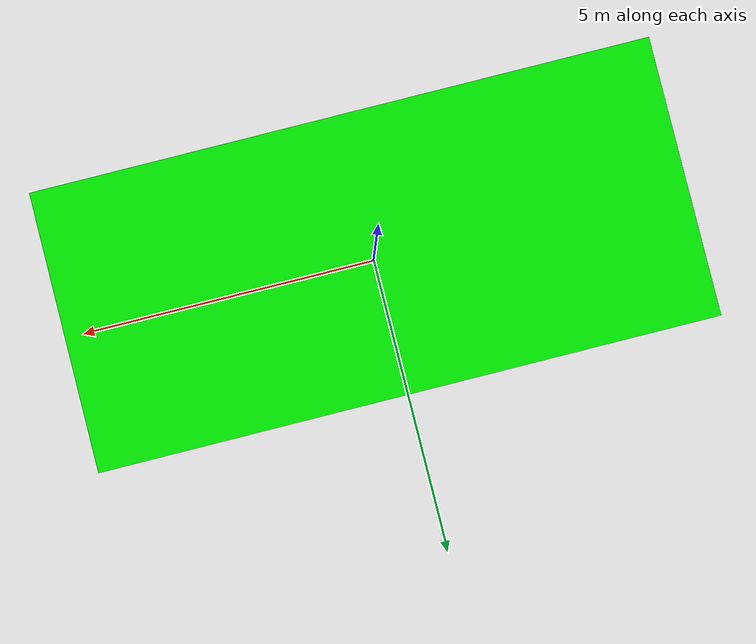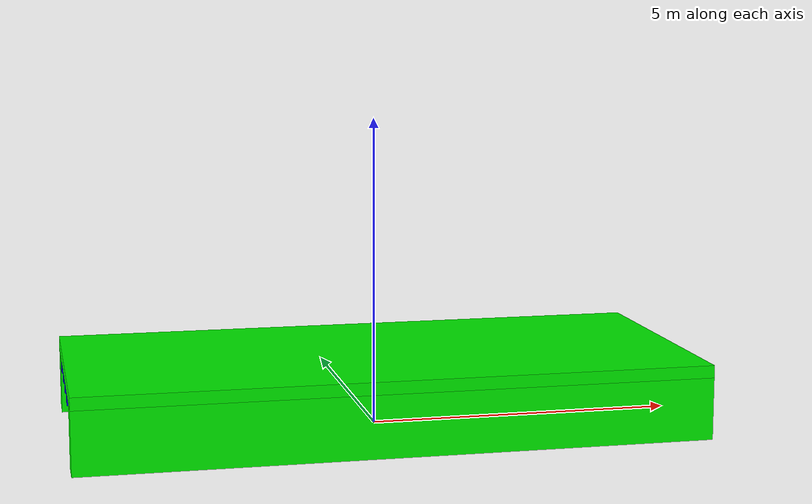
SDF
<?xml version='1.0'?>
<sdf version='1.7'>
  <model name='low_portal_with_obstacles'>
    <link name='link_0'>
      <inertial>
        <mass>1</mass>
        <inertia>
          <ixx>0.166667</ixx>
          <ixy>0</ixy>
          <ixz>0</ixz>
          <iyy>0.166667</iyy>
          <iyz>0</iyz>
          <izz>0.166667</izz>
        </inertia>
        <pose>0 0 0 0 -0 0</pose>
      </inertial>
      <pose>0 0 0 0 -0 0</pose>
      <gravity>1</gravity>
      <self_collide>0</self_collide>
      <kinematic>0</kinematic>
      <enable_wind>0</enable_wind>
      <visual name='visual'>
        <pose>0 2 0.5 0 -0 0</pose>
        <geometry>
          <box>
            <size>10 0.5 1</size>
          </box>
        </geometry>
        <material>
          <lighting>1</lighting>
          <script>
            <uri>file://media/materials/scripts/gazebo.material</uri>
            <name>Gazebo/Grey</name>
          </script>
          <shader type='pixel'>
            <normal_map>__default__</normal_map>
          </shader>
          <ambient>0 1 0 1</ambient>
          <diffuse>0.7 0.7 0.7 1</diffuse>
          <specular>0.01 0.01 0.01 1</specular>
          <emissive>0 0 0 1</emissive>
        </material>
        <transparency>0</transparency>
        <cast_shadows>1</cast_shadows>
      </visual>
      <visual name='ModelPreview_2::link_0::visual_7'>
        <pose>0 0.5 0.9 0 -0 0</pose>
        <geometry>
          <box>
            <size>10 0.2 0.2</size>
          </box>
        </geometry>
        <material>
          <lighting>1</lighting>
          <script>
            <uri>file://media/materials/scripts/gazebo.material</uri>
            <name>Gazebo/Grey</name>
          </script>
          <shader type='pixel'>
            <normal_map>__default__</normal_map>
          </shader>
          <ambient>0 0 1 1</ambient>
          <diffuse>0.7 0.7 0.7 1</diffuse>
          <specular>0.01 0.01 0.01 1</specular>
          <emissive>0 0 0 1</emissive>
        </material>
        <transparency>0</transparency>
        <cast_shadows>1</cast_shadows>
      </visual>
      <visual name='ModelPreview_2::link_0::visual_3'>
        <pose>0 1.25 0.9 0 -0 0</pose>
        <geometry>
          <box>
            <size>10 0.2 0.2</size>
          </box>
        </geometry>
        <material>
          <lighting>1</lighting>
          <script>
            <uri>file://media/materials/scripts/gazebo.material</uri>
            <name>Gazebo/Grey</name>
          </script>
          <shader type='pixel'>
            <normal_map>__default__</normal_map>
          </shader>
          <ambient>0 0 1 1</ambient>
          <diffuse>0.7 0.7 0.7 1</diffuse>
          <specular>0.01 0.01 0.01 1</specular>
          <emissive>0 0 0 1</emissive>
        </material>
        <transparency>0</transparency>
        <cast_shadows>1</cast_shadows>
      </visual>
      <visual name='ModelPreview_2::link_0::visual_8'>
        <pose>0 -0.2 0.9 0 -0 0</pose>
        <geometry>
          <box>
            <size>10 0.2 0.2</size>
          </box>
        </geometry>
        <material>
          <lighting>1</lighting>
          <script>
            <uri>file://media/materials/scripts/gazebo.material</uri>
            <name>Gazebo/Grey</name>
          </script>
          <shader type='pixel'>
            <normal_map>__default__</normal_map>
          </shader>
          <ambient>0 0 1 1</ambient>
          <diffuse>0.7 0.7 0.7 1</diffuse>
          <specular>0.01 0.01 0.01 1</specular>
          <emissive>0 0 0 1</emissive>
        </material>
        <transparency>0</transparency>
        <cast_shadows>1</cast_shadows>
      </visual>
      <visual name='ModelPreview_2::link_0::visual_9'>
        <pose>0 -1 0.9 0 -0 0</pose>
        <geometry>
          <box>
            <size>10 0.2 0.2</size>
          </box>
        </geometry>
        <material>
          <lighting>1</lighting>
          <script>
            <uri>file://media/materials/scripts/gazebo.material</uri>
            <name>Gazebo/Grey</name>
          </script>
          <shader type='pixel'>
            <normal_map>__default__</normal_map>
          </shader>
          <ambient>0 0 1 1</ambient>
          <diffuse>0.7 0.7 0.7 1</diffuse>
          <specular>0.01 0.01 0.01 1</specular>
          <emissive>0 0 0 1</emissive>
        </material>
        <transparency>0</transparency>
        <cast_shadows>1</cast_shadows>
      </visual>
      <visual name='ModelPreview_2::link_0::visual_2'>
        <pose>0 0 1.1 0 -0 0</pose>
        <geometry>
          <box>
            <size>10 4.5 0.2</size>
          </box>
        </geometry>
        <material>
          <lighting>1</lighting>
          <script>
            <uri>file://media/materials/scripts/gazebo.material</uri>
            <name>Gazebo/Grey</name>
          </script>
          <shader type='pixel'>
            <normal_map>__default__</normal_map>
          </shader>
          <ambient>0 1 0 1</ambient>
          <diffuse>0.7 0.7 0.7 1</diffuse>
          <specular>0.01 0.01 0.01 1</specular>
          <emissive>0 0 0 1</emissive>
        </material>
        <transparency>0</transparency>
        <cast_shadows>1</cast_shadows>
      </visual>
      <visual name='ModelPreview_2::link_0::visual_1'>
        <pose>0 -2 0.5 0 -0 0</pose>
        <geometry>
          <box>
            <size>10 0.5 1</size>
          </box>
        </geometry>
        <material>
          <lighting>1</lighting>
          <script>
            <uri>file://media/materials/scripts/gazebo.material</uri>
            <name>Gazebo/Grey</name>
          </script>
          <shader type='pixel'>
            <normal_map>__default__</normal_map>
          </shader>
          <ambient>0 1 0 1</ambient>
          <diffuse>0.7 0.7 0.7 1</diffuse>
          <specular>0.01 0.01 0.01 1</specular>
          <emissive>0 0 0 1</emissive>
        </material>
        <transparency>0</transparency>
        <cast_shadows>1</cast_shadows>
      </visual>
    </link>
    <static>1</static>
    <allow_auto_disable>1</allow_auto_disable>
  </model>
</sdf>
